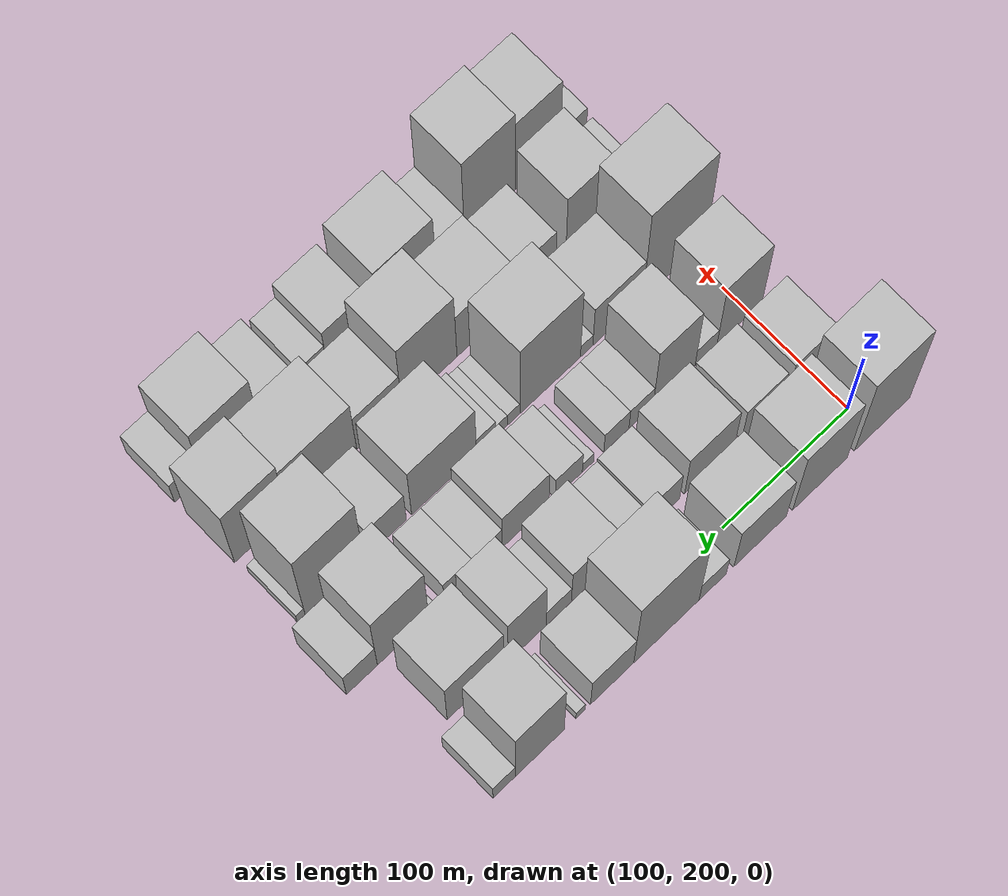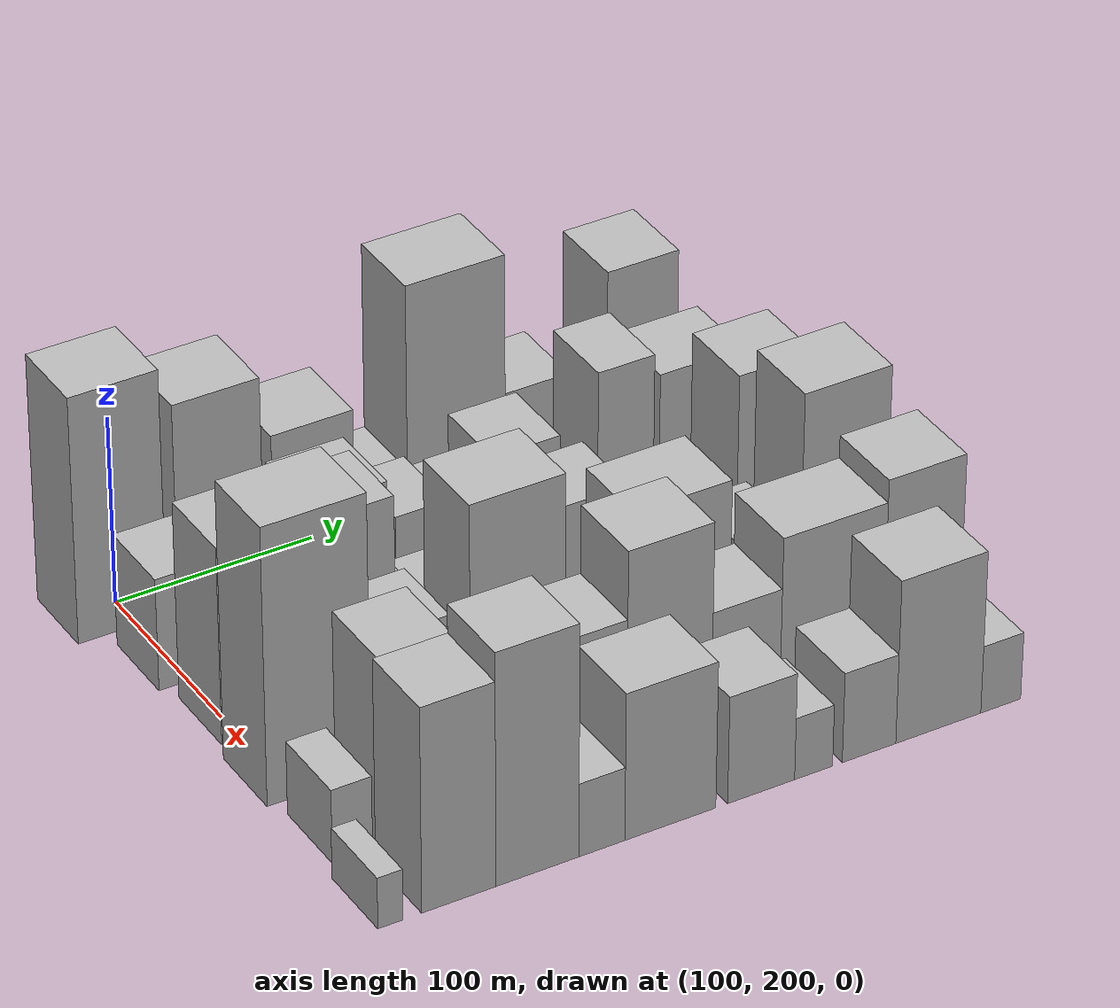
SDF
<sdf version="1.6">
 <world name="default">
  <model name="building_29">
   <static>1</static>
   <pose>100.0000 192.8923 0 0.000000 0.000000 0.000000</pose>
   <link name="link">
    <pose>0 0 66.00 0 0 0</pose>
    <collision name="collision"><geometry><box><size>40.0000 44.4707 132.0000</size></box></geometry></collision>
    <visual name="visual">
     <cast_shadows>0</cast_shadows>
     <geometry><box><size>40.0000 44.4707 132.0000</size></box></geometry>
     <material>
      <script>
       <uri>model://HANNAS_wall/materials/scripts</uri>
       <uri>model://HANNAS_wall/materials/textures</uri>
       <name>vrc/HANNAS_wall</name>
      </script>
     </material>
    </visual>
   </link>
  </model>
  <model name="building_30">
   <static>1</static>
   <pose>100.0000 243.0312 0 0.000000 0.000000 0.000000</pose>
   <link name="link">
    <pose>0 0 55.50 0 0 0</pose>
    <collision name="collision"><geometry><box><size>40.0000 43.8071 111.0000</size></box></geometry></collision>
    <visual name="visual">
     <cast_shadows>0</cast_shadows>
     <geometry><box><size>40.0000 43.8071 111.0000</size></box></geometry>
     <material>
      <script>
       <uri>model://HANNAS_wall/materials/scripts</uri>
       <uri>model://HANNAS_wall/materials/textures</uri>
       <name>vrc/HANNAS_wall</name>
      </script>
     </material>
    </visual>
   </link>
  </model>
  <model name="building_31">
   <static>1</static>
   <pose>100.0000 290.7490 0 0.000000 0.000000 0.000000</pose>
   <link name="link">
    <pose>0 0 39.00 0 0 0</pose>
    <collision name="collision"><geometry><box><size>40.0000 41.6285 78.0000</size></box></geometry></collision>
    <visual name="visual">
     <cast_shadows>0</cast_shadows>
     <geometry><box><size>40.0000 41.6285 78.0000</size></box></geometry>
     <material>
      <script>
       <uri>model://HANNAS_wall/materials/scripts</uri>
       <uri>model://HANNAS_wall/materials/textures</uri>
       <name>vrc/HANNAS_wall</name>
      </script>
     </material>
    </visual>
   </link>
  </model>
  <model name="building_32">
   <static>1</static>
   <pose>100.0000 328.3481 0 0.000000 0.000000 0.000000</pose>
   <link name="link">
    <pose>0 0 18.00 0 0 0</pose>
    <collision name="collision"><geometry><box><size>40.0000 21.5696 36.0000</size></box></geometry></collision>
    <visual name="visual">
     <cast_shadows>0</cast_shadows>
     <geometry><box><size>40.0000 21.5696 36.0000</size></box></geometry>
     <material>
      <script>
       <uri>model://HANNAS_wall/materials/scripts</uri>
       <uri>model://HANNAS_wall/materials/textures</uri>
       <name>vrc/HANNAS_wall</name>
      </script>
     </material>
    </visual>
   </link>
  </model>
  <model name="building_33">
   <static>1</static>
   <pose>100.0000 364.6896 0 0.000000 0.000000 0.000000</pose>
   <link name="link">
    <pose>0 0 67.50 0 0 0</pose>
    <collision name="collision"><geometry><box><size>40.0000 51.1135 135.0000</size></box></geometry></collision>
    <visual name="visual">
     <cast_shadows>0</cast_shadows>
     <geometry><box><size>40.0000 51.1135 135.0000</size></box></geometry>
     <material>
      <script>
       <uri>model://HANNAS_wall/materials/scripts</uri>
       <uri>model://HANNAS_wall/materials/textures</uri>
       <name>vrc/HANNAS_wall</name>
      </script>
     </material>
    </visual>
   </link>
  </model>
  <model name="building_34">
   <static>1</static>
   <pose>100.0000 407.0011 0 0.000000 0.000000 0.000000</pose>
   <link name="link">
    <pose>0 0 30.00 0 0 0</pose>
    <collision name="collision"><geometry><box><size>40.0000 33.5095 60.0000</size></box></geometry></collision>
    <visual name="visual">
     <cast_shadows>0</cast_shadows>
     <geometry><box><size>40.0000 33.5095 60.0000</size></box></geometry>
     <material>
      <script>
       <uri>model://HANNAS_wall/materials/scripts</uri>
       <uri>model://HANNAS_wall/materials/textures</uri>
       <name>vrc/HANNAS_wall</name>
      </script>
     </material>
    </visual>
   </link>
  </model>
  <model name="building_35">
   <static>1</static>
   <pose>100.0000 431.4122 0 0.000000 0.000000 0.000000</pose>
   <link name="link">
    <pose>0 0 7.50 0 0 0</pose>
    <collision name="collision"><geometry><box><size>40.0000 7.3127 15.0000</size></box></geometry></collision>
    <visual name="visual">
     <cast_shadows>0</cast_shadows>
     <geometry><box><size>40.0000 7.3127 15.0000</size></box></geometry>
     <material>
      <script>
       <uri>model://HANNAS_wall/materials/scripts</uri>
       <uri>model://HANNAS_wall/materials/textures</uri>
       <name>vrc/HANNAS_wall</name>
      </script>
     </material>
    </visual>
   </link>
  </model>
  <model name="building_36">
   <static>1</static>
   <pose>100.0000 462.8106 0 0.000000 0.000000 0.000000</pose>
   <link name="link">
    <pose>0 0 54.00 0 0 0</pose>
    <collision name="collision"><geometry><box><size>40.0000 37.4840 108.0000</size></box></geometry></collision>
    <visual name="visual">
     <cast_shadows>0</cast_shadows>
     <geometry><box><size>40.0000 37.4840 108.0000</size></box></geometry>
     <material>
      <script>
       <uri>model://HANNAS_wall/materials/scripts</uri>
       <uri>model://HANNAS_wall/materials/textures</uri>
       <name>vrc/HANNAS_wall</name>
      </script>
     </material>
    </visual>
   </link>
  </model>
  <model name="building_37">
   <static>1</static>
   <pose>100.0000 490.0968 0 0.000000 0.000000 0.000000</pose>
   <link name="link">
    <pose>0 0 15.00 0 0 0</pose>
    <collision name="collision"><geometry><box><size>40.0000 17.0884 30.0000</size></box></geometry></collision>
    <visual name="visual">
     <cast_shadows>0</cast_shadows>
     <geometry><box><size>40.0000 17.0884 30.0000</size></box></geometry>
     <material>
      <script>
       <uri>model://HANNAS_wall/materials/scripts</uri>
       <uri>model://HANNAS_wall/materials/textures</uri>
       <name>vrc/HANNAS_wall</name>
      </script>
     </material>
    </visual>
   </link>
  </model>
  <model name="building_76">
   <static>1</static>
   <pose>149.0000 202.2309 0 0.000000 0.000000 0.000000</pose>
   <link name="link">
    <pose>0 0 30.00 0 0 0</pose>
    <collision name="collision"><geometry><box><size>40.0000 33.4628 60.0000</size></box></geometry></collision>
    <visual name="visual">
     <cast_shadows>0</cast_shadows>
     <geometry><box><size>40.0000 33.4628 60.0000</size></box></geometry>
     <material>
      <script>
       <uri>model://HANNAS_wall/materials/scripts</uri>
       <uri>model://HANNAS_wall/materials/textures</uri>
       <name>vrc/HANNAS_wall</name>
      </script>
     </material>
    </visual>
   </link>
  </model>
  <model name="building_77">
   <static>1</static>
   <pose>149.0000 240.1183 0 0.000000 0.000000 0.000000</pose>
   <link name="link">
    <pose>0 0 28.50 0 0 0</pose>
    <collision name="collision"><geometry><box><size>40.0000 32.3120 57.0000</size></box></geometry></collision>
    <visual name="visual">
     <cast_shadows>0</cast_shadows>
     <geometry><box><size>40.0000 32.3120 57.0000</size></box></geometry>
     <material>
      <script>
       <uri>model://HANNAS_wall/materials/scripts</uri>
       <uri>model://HANNAS_wall/materials/textures</uri>
       <name>vrc/HANNAS_wall</name>
      </script>
     </material>
    </visual>
   </link>
  </model>
  <model name="building_78">
   <static>1</static>
   <pose>149.0000 281.9620 0 0.000000 0.000000 0.000000</pose>
   <link name="link">
    <pose>0 0 36.00 0 0 0</pose>
    <collision name="collision"><geometry><box><size>40.0000 39.3752 72.0000</size></box></geometry></collision>
    <visual name="visual">
     <cast_shadows>0</cast_shadows>
     <geometry><box><size>40.0000 39.3752 72.0000</size></box></geometry>
     <material>
      <script>
       <uri>model://HANNAS_wall/materials/scripts</uri>
       <uri>model://HANNAS_wall/materials/textures</uri>
       <name>vrc/HANNAS_wall</name>
      </script>
     </material>
    </visual>
   </link>
  </model>
  <model name="building_79">
   <static>1</static>
   <pose>149.0000 319.0862 0 0.000000 0.000000 0.000000</pose>
   <link name="link">
    <pose>0 0 25.50 0 0 0</pose>
    <collision name="collision"><geometry><box><size>40.0000 26.8733 51.0000</size></box></geometry></collision>
    <visual name="visual">
     <cast_shadows>0</cast_shadows>
     <geometry><box><size>40.0000 26.8733 51.0000</size></box></geometry>
     <material>
      <script>
       <uri>model://HANNAS_wall/materials/scripts</uri>
       <uri>model://HANNAS_wall/materials/textures</uri>
       <name>vrc/HANNAS_wall</name>
      </script>
     </material>
    </visual>
   </link>
  </model>
  <model name="building_80">
   <static>1</static>
   <pose>149.0000 343.9916 0 0.000000 0.000000 0.000000</pose>
   <link name="link">
    <pose>0 0 22.50 0 0 0</pose>
    <collision name="collision"><geometry><box><size>40.0000 22.9375 45.0000</size></box></geometry></collision>
    <visual name="visual">
     <cast_shadows>0</cast_shadows>
     <geometry><box><size>40.0000 22.9375 45.0000</size></box></geometry>
     <material>
      <script>
       <uri>model://HANNAS_wall/materials/scripts</uri>
       <uri>model://HANNAS_wall/materials/textures</uri>
       <name>vrc/HANNAS_wall</name>
      </script>
     </material>
    </visual>
   </link>
  </model>
  <model name="building_81">
   <static>1</static>
   <pose>149.0000 373.0368 0 0.000000 0.000000 0.000000</pose>
   <link name="link">
    <pose>0 0 33.00 0 0 0</pose>
    <collision name="collision"><geometry><box><size>40.0000 35.1529 66.0000</size></box></geometry></collision>
    <visual name="visual">
     <cast_shadows>0</cast_shadows>
     <geometry><box><size>40.0000 35.1529 66.0000</size></box></geometry>
     <material>
      <script>
       <uri>model://HANNAS_wall/materials/scripts</uri>
       <uri>model://HANNAS_wall/materials/textures</uri>
       <name>vrc/HANNAS_wall</name>
      </script>
     </material>
    </visual>
   </link>
  </model>
  <model name="building_82">
   <static>1</static>
   <pose>149.0000 400.3990 0 0.000000 0.000000 0.000000</pose>
   <link name="link">
    <pose>0 0 16.50 0 0 0</pose>
    <collision name="collision"><geometry><box><size>40.0000 19.5715 33.0000</size></box></geometry></collision>
    <visual name="visual">
     <cast_shadows>0</cast_shadows>
     <geometry><box><size>40.0000 19.5715 33.0000</size></box></geometry>
     <material>
      <script>
       <uri>model://HANNAS_wall/materials/scripts</uri>
       <uri>model://HANNAS_wall/materials/textures</uri>
       <name>vrc/HANNAS_wall</name>
      </script>
     </material>
    </visual>
   </link>
  </model>
  <model name="building_83">
   <static>1</static>
   <pose>149.0000 424.9058 0 0.000000 0.000000 0.000000</pose>
   <link name="link">
    <pose>0 0 46.50 0 0 0</pose>
    <collision name="collision"><geometry><box><size>40.0000 29.4421 93.0000</size></box></geometry></collision>
    <visual name="visual">
     <cast_shadows>0</cast_shadows>
     <geometry><box><size>40.0000 29.4421 93.0000</size></box></geometry>
     <material>
      <script>
       <uri>model://HANNAS_wall/materials/scripts</uri>
       <uri>model://HANNAS_wall/materials/textures</uri>
       <name>vrc/HANNAS_wall</name>
      </script>
     </material>
    </visual>
   </link>
  </model>
  <model name="building_84">
   <static>1</static>
   <pose>149.0000 464.5545 0 0.000000 0.000000 0.000000</pose>
   <link name="link">
    <pose>0 0 40.50 0 0 0</pose>
    <collision name="collision"><geometry><box><size>40.0000 43.8552 81.0000</size></box></geometry></collision>
    <visual name="visual">
     <cast_shadows>0</cast_shadows>
     <geometry><box><size>40.0000 43.8552 81.0000</size></box></geometry>
     <material>
      <script>
       <uri>model://HANNAS_wall/materials/scripts</uri>
       <uri>model://HANNAS_wall/materials/textures</uri>
       <name>vrc/HANNAS_wall</name>
      </script>
     </material>
    </visual>
   </link>
  </model>
  <model name="building_122">
   <static>1</static>
   <pose>198.0000 208.8741 0 0.000000 0.000000 0.000000</pose>
   <link name="link">
    <pose>0 0 52.50 0 0 0</pose>
    <collision name="collision"><geometry><box><size>40.0000 36.3513 105.0000</size></box></geometry></collision>
    <visual name="visual">
     <cast_shadows>0</cast_shadows>
     <geometry><box><size>40.0000 36.3513 105.0000</size></box></geometry>
     <material>
      <script>
       <uri>model://HANNAS_wall/materials/scripts</uri>
       <uri>model://HANNAS_wall/materials/textures</uri>
       <name>vrc/HANNAS_wall</name>
      </script>
     </material>
    </visual>
   </link>
  </model>
  <model name="building_123">
   <static>1</static>
   <pose>198.0000 235.8446 0 0.000000 0.000000 0.000000</pose>
   <link name="link">
    <pose>0 0 15.00 0 0 0</pose>
    <collision name="collision"><geometry><box><size>40.0000 17.5897 30.0000</size></box></geometry></collision>
    <visual name="visual">
     <cast_shadows>0</cast_shadows>
     <geometry><box><size>40.0000 17.5897 30.0000</size></box></geometry>
     <material>
      <script>
       <uri>model://HANNAS_wall/materials/scripts</uri>
       <uri>model://HANNAS_wall/materials/textures</uri>
       <name>vrc/HANNAS_wall</name>
      </script>
     </material>
    </visual>
   </link>
  </model>
  <model name="building_124">
   <static>1</static>
   <pose>198.0000 261.3293 0 0.000000 0.000000 0.000000</pose>
   <link name="link">
    <pose>0 0 51.00 0 0 0</pose>
    <collision name="collision"><geometry><box><size>40.0000 33.3797 102.0000</size></box></geometry></collision>
    <visual name="visual">
     <cast_shadows>0</cast_shadows>
     <geometry><box><size>40.0000 33.3797 102.0000</size></box></geometry>
     <material>
      <script>
       <uri>model://HANNAS_wall/materials/scripts</uri>
       <uri>model://HANNAS_wall/materials/textures</uri>
       <name>vrc/HANNAS_wall</name>
      </script>
     </material>
    </visual>
   </link>
  </model>
  <model name="building_125">
   <static>1</static>
   <pose>198.0000 287.6530 0 0.000000 0.000000 0.000000</pose>
   <link name="link">
    <pose>0 0 18.00 0 0 0</pose>
    <collision name="collision"><geometry><box><size>40.0000 19.2679 36.0000</size></box></geometry></collision>
    <visual name="visual">
     <cast_shadows>0</cast_shadows>
     <geometry><box><size>40.0000 19.2679 36.0000</size></box></geometry>
     <material>
      <script>
       <uri>model://HANNAS_wall/materials/scripts</uri>
       <uri>model://HANNAS_wall/materials/textures</uri>
       <name>vrc/HANNAS_wall</name>
      </script>
     </material>
    </visual>
   </link>
  </model>
  <model name="building_126">
   <static>1</static>
   <pose>198.0000 307.2632 0 0.000000 0.000000 0.000000</pose>
   <link name="link">
    <pose>0 0 18.00 0 0 0</pose>
    <collision name="collision"><geometry><box><size>40.0000 19.9525 36.0000</size></box></geometry></collision>
    <visual name="visual">
     <cast_shadows>0</cast_shadows>
     <geometry><box><size>40.0000 19.9525 36.0000</size></box></geometry>
     <material>
      <script>
       <uri>model://HANNAS_wall/materials/scripts</uri>
       <uri>model://HANNAS_wall/materials/textures</uri>
       <name>vrc/HANNAS_wall</name>
      </script>
     </material>
    </visual>
   </link>
  </model>
  <model name="building_127">
   <static>1</static>
   <pose>198.0000 329.7001 0 0.000000 0.000000 0.000000</pose>
   <link name="link">
    <pose>0 0 9.00 0 0 0</pose>
    <collision name="collision"><geometry><box><size>40.0000 8.9213 18.0000</size></box></geometry></collision>
    <visual name="visual">
     <cast_shadows>0</cast_shadows>
     <geometry><box><size>40.0000 8.9213 18.0000</size></box></geometry>
     <material>
      <script>
       <uri>model://HANNAS_wall/materials/scripts</uri>
       <uri>model://HANNAS_wall/materials/textures</uri>
       <name>vrc/HANNAS_wall</name>
      </script>
     </material>
    </visual>
   </link>
  </model>
  <model name="building_128">
   <static>1</static>
   <pose>198.0000 344.7914 0 0.000000 0.000000 0.000000</pose>
   <link name="link">
    <pose>0 0 19.50 0 0 0</pose>
    <collision name="collision"><geometry><box><size>40.0000 21.2613 39.0000</size></box></geometry></collision>
    <visual name="visual">
     <cast_shadows>0</cast_shadows>
     <geometry><box><size>40.0000 21.2613 39.0000</size></box></geometry>
     <material>
      <script>
       <uri>model://HANNAS_wall/materials/scripts</uri>
       <uri>model://HANNAS_wall/materials/textures</uri>
       <name>vrc/HANNAS_wall</name>
      </script>
     </material>
    </visual>
   </link>
  </model>
  <model name="building_129">
   <static>1</static>
   <pose>198.0000 378.5626 0 0.000000 0.000000 0.000000</pose>
   <link name="link">
    <pose>0 0 33.00 0 0 0</pose>
    <collision name="collision"><geometry><box><size>40.0000 36.2810 66.0000</size></box></geometry></collision>
    <visual name="visual">
     <cast_shadows>0</cast_shadows>
     <geometry><box><size>40.0000 36.2810 66.0000</size></box></geometry>
     <material>
      <script>
       <uri>model://HANNAS_wall/materials/scripts</uri>
       <uri>model://HANNAS_wall/materials/textures</uri>
       <name>vrc/HANNAS_wall</name>
      </script>
     </material>
    </visual>
   </link>
  </model>
  <model name="building_130">
   <static>1</static>
   <pose>198.0000 408.3491 0 0.000000 0.000000 0.000000</pose>
   <link name="link">
    <pose>0 0 21.00 0 0 0</pose>
    <collision name="collision"><geometry><box><size>40.0000 23.2920 42.0000</size></box></geometry></collision>
    <visual name="visual">
     <cast_shadows>0</cast_shadows>
     <geometry><box><size>40.0000 23.2920 42.0000</size></box></geometry>
     <material>
      <script>
       <uri>model://HANNAS_wall/materials/scripts</uri>
       <uri>model://HANNAS_wall/materials/textures</uri>
       <name>vrc/HANNAS_wall</name>
      </script>
     </material>
    </visual>
   </link>
  </model>
  <model name="building_131">
   <static>1</static>
   <pose>198.0000 430.8841 0 0.000000 0.000000 0.000000</pose>
   <link name="link">
    <pose>0 0 21.00 0 0 0</pose>
    <collision name="collision"><geometry><box><size>40.0000 21.7779 42.0000</size></box></geometry></collision>
    <visual name="visual">
     <cast_shadows>0</cast_shadows>
     <geometry><box><size>40.0000 21.7779 42.0000</size></box></geometry>
     <material>
      <script>
       <uri>model://HANNAS_wall/materials/scripts</uri>
       <uri>model://HANNAS_wall/materials/textures</uri>
       <name>vrc/HANNAS_wall</name>
      </script>
     </material>
    </visual>
   </link>
  </model>
  <model name="building_132">
   <static>1</static>
   <pose>198.0000 450.7834 0 0.000000 0.000000 0.000000</pose>
   <link name="link">
    <pose>0 0 7.50 0 0 0</pose>
    <collision name="collision"><geometry><box><size>40.0000 6.0209 15.0000</size></box></geometry></collision>
    <visual name="visual">
     <cast_shadows>0</cast_shadows>
     <geometry><box><size>40.0000 6.0209 15.0000</size></box></geometry>
     <material>
      <script>
       <uri>model://HANNAS_wall/materials/scripts</uri>
       <uri>model://HANNAS_wall/materials/textures</uri>
       <name>vrc/HANNAS_wall</name>
      </script>
     </material>
    </visual>
   </link>
  </model>
  <model name="building_133">
   <static>1</static>
   <pose>198.0000 473.4392 0 0.000000 0.000000 0.000000</pose>
   <link name="link">
    <pose>0 0 52.50 0 0 0</pose>
    <collision name="collision"><geometry><box><size>40.0000 39.2907 105.0000</size></box></geometry></collision>
    <visual name="visual">
     <cast_shadows>0</cast_shadows>
     <geometry><box><size>40.0000 39.2907 105.0000</size></box></geometry>
     <material>
      <script>
       <uri>model://HANNAS_wall/materials/scripts</uri>
       <uri>model://HANNAS_wall/materials/textures</uri>
       <name>vrc/HANNAS_wall</name>
      </script>
     </material>
    </visual>
   </link>
  </model>
  <model name="building_134">
   <static>1</static>
   <pose>198.0000 504.9357 0 0.000000 0.000000 0.000000</pose>
   <link name="link">
    <pose>0 0 22.50 0 0 0</pose>
    <collision name="collision"><geometry><box><size>40.0000 23.7022 45.0000</size></box></geometry></collision>
    <visual name="visual">
     <cast_shadows>0</cast_shadows>
     <geometry><box><size>40.0000 23.7022 45.0000</size></box></geometry>
     <material>
      <script>
       <uri>model://HANNAS_wall/materials/scripts</uri>
       <uri>model://HANNAS_wall/materials/textures</uri>
       <name>vrc/HANNAS_wall</name>
      </script>
     </material>
    </visual>
   </link>
  </model>
  <model name="building_182">
   <static>1</static>
   <pose>247.0000 212.2404 0 0.000000 0.000000 0.000000</pose>
   <link name="link">
    <pose>0 0 73.50 0 0 0</pose>
    <collision name="collision"><geometry><box><size>40.0000 51.1630 147.0000</size></box></geometry></collision>
    <visual name="visual">
     <cast_shadows>0</cast_shadows>
     <geometry><box><size>40.0000 51.1630 147.0000</size></box></geometry>
     <material>
      <script>
       <uri>model://HANNAS_wall/materials/scripts</uri>
       <uri>model://HANNAS_wall/materials/textures</uri>
       <name>vrc/HANNAS_wall</name>
      </script>
     </material>
    </visual>
   </link>
  </model>
  <model name="building_183">
   <static>1</static>
   <pose>247.0000 257.8238 0 0.000000 0.000000 0.000000</pose>
   <link name="link">
    <pose>0 0 34.50 0 0 0</pose>
    <collision name="collision"><geometry><box><size>40.0000 40.0038 69.0000</size></box></geometry></collision>
    <visual name="visual">
     <cast_shadows>0</cast_shadows>
     <geometry><box><size>40.0000 40.0038 69.0000</size></box></geometry>
     <material>
      <script>
       <uri>model://HANNAS_wall/materials/scripts</uri>
       <uri>model://HANNAS_wall/materials/textures</uri>
       <name>vrc/HANNAS_wall</name>
      </script>
     </material>
    </visual>
   </link>
  </model>
  <model name="building_184">
   <static>1</static>
   <pose>247.0000 282.7616 0 0.000000 0.000000 0.000000</pose>
   <link name="link">
    <pose>0 0 10.50 0 0 0</pose>
    <collision name="collision"><geometry><box><size>40.0000 9.8719 21.0000</size></box></geometry></collision>
    <visual name="visual">
     <cast_shadows>0</cast_shadows>
     <geometry><box><size>40.0000 9.8719 21.0000</size></box></geometry>
     <material>
      <script>
       <uri>model://HANNAS_wall/materials/scripts</uri>
       <uri>model://HANNAS_wall/materials/textures</uri>
       <name>vrc/HANNAS_wall</name>
      </script>
     </material>
    </visual>
   </link>
  </model>
  <model name="building_185">
   <static>1</static>
   <pose>247.0000 311.6670 0 0.000000 0.000000 0.000000</pose>
   <link name="link">
    <pose>0 0 61.50 0 0 0</pose>
    <collision name="collision"><geometry><box><size>40.0000 47.9388 123.0000</size></box></geometry></collision>
    <visual name="visual">
     <cast_shadows>0</cast_shadows>
     <geometry><box><size>40.0000 47.9388 123.0000</size></box></geometry>
     <material>
      <script>
       <uri>model://HANNAS_wall/materials/scripts</uri>
       <uri>model://HANNAS_wall/materials/textures</uri>
       <name>vrc/HANNAS_wall</name>
      </script>
     </material>
    </visual>
   </link>
  </model>
  <model name="building_186">
   <static>1</static>
   <pose>247.0000 340.5482 0 0.000000 0.000000 0.000000</pose>
   <link name="link">
    <pose>0 0 10.50 0 0 0</pose>
    <collision name="collision"><geometry><box><size>40.0000 9.8236 21.0000</size></box></geometry></collision>
    <visual name="visual">
     <cast_shadows>0</cast_shadows>
     <geometry><box><size>40.0000 9.8236 21.0000</size></box></geometry>
     <material>
      <script>
       <uri>model://HANNAS_wall/materials/scripts</uri>
       <uri>model://HANNAS_wall/materials/textures</uri>
       <name>vrc/HANNAS_wall</name>
      </script>
     </material>
    </visual>
   </link>
  </model>
  <model name="building_187">
   <static>1</static>
   <pose>247.0000 349.9253 0 0.000000 0.000000 0.000000</pose>
   <link name="link">
    <pose>0 0 10.50 0 0 0</pose>
    <collision name="collision"><geometry><box><size>40.0000 8.9304 21.0000</size></box></geometry></collision>
    <visual name="visual">
     <cast_shadows>0</cast_shadows>
     <geometry><box><size>40.0000 8.9304 21.0000</size></box></geometry>
     <material>
      <script>
       <uri>model://HANNAS_wall/materials/scripts</uri>
       <uri>model://HANNAS_wall/materials/textures</uri>
       <name>vrc/HANNAS_wall</name>
      </script>
     </material>
    </visual>
   </link>
  </model>
  <model name="building_188">
   <static>1</static>
   <pose>247.0000 361.9698 0 0.000000 0.000000 0.000000</pose>
   <link name="link">
    <pose>0 0 15.00 0 0 0</pose>
    <collision name="collision"><geometry><box><size>40.0000 15.1586 30.0000</size></box></geometry></collision>
    <visual name="visual">
     <cast_shadows>0</cast_shadows>
     <geometry><box><size>40.0000 15.1586 30.0000</size></box></geometry>
     <material>
      <script>
       <uri>model://HANNAS_wall/materials/scripts</uri>
       <uri>model://HANNAS_wall/materials/textures</uri>
       <name>vrc/HANNAS_wall</name>
      </script>
     </material>
    </visual>
   </link>
  </model>
  <model name="building_189">
   <static>1</static>
   <pose>247.0000 394.8793 0 0.000000 0.000000 0.000000</pose>
   <link name="link">
    <pose>0 0 45.00 0 0 0</pose>
    <collision name="collision"><geometry><box><size>40.0000 50.6605 90.0000</size></box></geometry></collision>
    <visual name="visual">
     <cast_shadows>0</cast_shadows>
     <geometry><box><size>40.0000 50.6605 90.0000</size></box></geometry>
     <material>
      <script>
       <uri>model://HANNAS_wall/materials/scripts</uri>
       <uri>model://HANNAS_wall/materials/textures</uri>
       <name>vrc/HANNAS_wall</name>
      </script>
     </material>
    </visual>
   </link>
  </model>
  <model name="building_190">
   <static>1</static>
   <pose>247.0000 438.5553 0 0.000000 0.000000 0.000000</pose>
   <link name="link">
    <pose>0 0 27.00 0 0 0</pose>
    <collision name="collision"><geometry><box><size>40.0000 28.6915 54.0000</size></box></geometry></collision>
    <visual name="visual">
     <cast_shadows>0</cast_shadows>
     <geometry><box><size>40.0000 28.6915 54.0000</size></box></geometry>
     <material>
      <script>
       <uri>model://HANNAS_wall/materials/scripts</uri>
       <uri>model://HANNAS_wall/materials/textures</uri>
       <name>vrc/HANNAS_wall</name>
      </script>
     </material>
    </visual>
   </link>
  </model>
  <model name="building_191">
   <static>1</static>
   <pose>247.0000 479.5431 0 0.000000 0.000000 0.000000</pose>
   <link name="link">
    <pose>0 0 61.50 0 0 0</pose>
    <collision name="collision"><geometry><box><size>40.0000 45.2839 123.0000</size></box></geometry></collision>
    <visual name="visual">
     <cast_shadows>0</cast_shadows>
     <geometry><box><size>40.0000 45.2839 123.0000</size></box></geometry>
     <material>
      <script>
       <uri>model://HANNAS_wall/materials/scripts</uri>
       <uri>model://HANNAS_wall/materials/textures</uri>
       <name>vrc/HANNAS_wall</name>
      </script>
     </material>
    </visual>
   </link>
  </model>
  <model name="building_192">
   <static>1</static>
   <pose>247.0000 505.2064 0 0.000000 0.000000 0.000000</pose>
   <link name="link">
    <pose>0 0 7.50 0 0 0</pose>
    <collision name="collision"><geometry><box><size>40.0000 6.0427 15.0000</size></box></geometry></collision>
    <visual name="visual">
     <cast_shadows>0</cast_shadows>
     <geometry><box><size>40.0000 6.0427 15.0000</size></box></geometry>
     <material>
      <script>
       <uri>model://HANNAS_wall/materials/scripts</uri>
       <uri>model://HANNAS_wall/materials/textures</uri>
       <name>vrc/HANNAS_wall</name>
      </script>
     </material>
    </visual>
   </link>
  </model>
  <model name="building_232">
   <static>1</static>
   <pose>296.0000 201.5705 0 0.000000 0.000000 0.000000</pose>
   <link name="link">
    <pose>0 0 19.50 0 0 0</pose>
    <collision name="collision"><geometry><box><size>40.0000 19.6628 39.0000</size></box></geometry></collision>
    <visual name="visual">
     <cast_shadows>0</cast_shadows>
     <geometry><box><size>40.0000 19.6628 39.0000</size></box></geometry>
     <material>
      <script>
       <uri>model://HANNAS_wall/materials/scripts</uri>
       <uri>model://HANNAS_wall/materials/textures</uri>
       <name>vrc/HANNAS_wall</name>
      </script>
     </material>
    </visual>
   </link>
  </model>
  <model name="building_233">
   <static>1</static>
   <pose>296.0000 233.4391 0 0.000000 0.000000 0.000000</pose>
   <link name="link">
    <pose>0 0 49.50 0 0 0</pose>
    <collision name="collision"><geometry><box><size>40.0000 36.0744 99.0000</size></box></geometry></collision>
    <visual name="visual">
     <cast_shadows>0</cast_shadows>
     <geometry><box><size>40.0000 36.0744 99.0000</size></box></geometry>
     <material>
      <script>
       <uri>model://HANNAS_wall/materials/scripts</uri>
       <uri>model://HANNAS_wall/materials/textures</uri>
       <name>vrc/HANNAS_wall</name>
      </script>
     </material>
    </visual>
   </link>
  </model>
  <model name="building_234">
   <static>1</static>
   <pose>296.0000 276.3357 0 0.000000 0.000000 0.000000</pose>
   <link name="link">
    <pose>0 0 30.00 0 0 0</pose>
    <collision name="collision"><geometry><box><size>40.0000 33.7189 60.0000</size></box></geometry></collision>
    <visual name="visual">
     <cast_shadows>0</cast_shadows>
     <geometry><box><size>40.0000 33.7189 60.0000</size></box></geometry>
     <material>
      <script>
       <uri>model://HANNAS_wall/materials/scripts</uri>
       <uri>model://HANNAS_wall/materials/textures</uri>
       <name>vrc/HANNAS_wall</name>
      </script>
     </material>
    </visual>
   </link>
  </model>
  <model name="building_235">
   <static>1</static>
   <pose>296.0000 315.5065 0 0.000000 0.000000 0.000000</pose>
   <link name="link">
    <pose>0 0 37.50 0 0 0</pose>
    <collision name="collision"><geometry><box><size>40.0000 44.6225 75.0000</size></box></geometry></collision>
    <visual name="visual">
     <cast_shadows>0</cast_shadows>
     <geometry><box><size>40.0000 44.6225 75.0000</size></box></geometry>
     <material>
      <script>
       <uri>model://HANNAS_wall/materials/scripts</uri>
       <uri>model://HANNAS_wall/materials/textures</uri>
       <name>vrc/HANNAS_wall</name>
      </script>
     </material>
    </visual>
   </link>
  </model>
  <model name="building_236">
   <static>1</static>
   <pose>296.0000 359.3648 0 0.000000 0.000000 0.000000</pose>
   <link name="link">
    <pose>0 0 55.50 0 0 0</pose>
    <collision name="collision"><geometry><box><size>40.0000 43.0940 111.0000</size></box></geometry></collision>
    <visual name="visual">
     <cast_shadows>0</cast_shadows>
     <geometry><box><size>40.0000 43.0940 111.0000</size></box></geometry>
     <material>
      <script>
       <uri>model://HANNAS_wall/materials/scripts</uri>
       <uri>model://HANNAS_wall/materials/textures</uri>
       <name>vrc/HANNAS_wall</name>
      </script>
     </material>
    </visual>
   </link>
  </model>
  <model name="building_237">
   <static>1</static>
   <pose>296.0000 398.5530 0 0.000000 0.000000 0.000000</pose>
   <link name="link">
    <pose>0 0 31.50 0 0 0</pose>
    <collision name="collision"><geometry><box><size>40.0000 35.2824 63.0000</size></box></geometry></collision>
    <visual name="visual">
     <cast_shadows>0</cast_shadows>
     <geometry><box><size>40.0000 35.2824 63.0000</size></box></geometry>
     <material>
      <script>
       <uri>model://HANNAS_wall/materials/scripts</uri>
       <uri>model://HANNAS_wall/materials/textures</uri>
       <name>vrc/HANNAS_wall</name>
      </script>
     </material>
    </visual>
   </link>
  </model>
  <model name="building_238">
   <static>1</static>
   <pose>296.0000 443.0088 0 0.000000 0.000000 0.000000</pose>
   <link name="link">
    <pose>0 0 45.00 0 0 0</pose>
    <collision name="collision"><geometry><box><size>40.0000 53.6292 90.0000</size></box></geometry></collision>
    <visual name="visual">
     <cast_shadows>0</cast_shadows>
     <geometry><box><size>40.0000 53.6292 90.0000</size></box></geometry>
     <material>
      <script>
       <uri>model://HANNAS_wall/materials/scripts</uri>
       <uri>model://HANNAS_wall/materials/textures</uri>
       <name>vrc/HANNAS_wall</name>
      </script>
     </material>
    </visual>
   </link>
  </model>
  <model name="building_239">
   <static>1</static>
   <pose>296.0000 489.9892 0 0.000000 0.000000 0.000000</pose>
   <link name="link">
    <pose>0 0 51.00 0 0 0</pose>
    <collision name="collision"><geometry><box><size>40.0000 40.3316 102.0000</size></box></geometry></collision>
    <visual name="visual">
     <cast_shadows>0</cast_shadows>
     <geometry><box><size>40.0000 40.3316 102.0000</size></box></geometry>
     <material>
      <script>
       <uri>model://HANNAS_wall/materials/scripts</uri>
       <uri>model://HANNAS_wall/materials/textures</uri>
       <name>vrc/HANNAS_wall</name>
      </script>
     </material>
    </visual>
   </link>
  </model>
  <model name="building_280">
   <static>1</static>
   <pose>345.0000 192.7028 0 0.000000 0.000000 0.000000</pose>
   <link name="link">
    <pose>0 0 13.50 0 0 0</pose>
    <collision name="collision"><geometry><box><size>40.0000 12.1884 27.0000</size></box></geometry></collision>
    <visual name="visual">
     <cast_shadows>0</cast_shadows>
     <geometry><box><size>40.0000 12.1884 27.0000</size></box></geometry>
     <material>
      <script>
       <uri>model://HANNAS_wall/materials/scripts</uri>
       <uri>model://HANNAS_wall/materials/textures</uri>
       <name>vrc/HANNAS_wall</name>
      </script>
     </material>
    </visual>
   </link>
  </model>
  <model name="building_281">
   <static>1</static>
   <pose>345.0000 225.8508 0 0.000000 0.000000 0.000000</pose>
   <link name="link">
    <pose>0 0 54.00 0 0 0</pose>
    <collision name="collision"><geometry><box><size>40.0000 36.1076 108.0000</size></box></geometry></collision>
    <visual name="visual">
     <cast_shadows>0</cast_shadows>
     <geometry><box><size>40.0000 36.1076 108.0000</size></box></geometry>
     <material>
      <script>
       <uri>model://HANNAS_wall/materials/scripts</uri>
       <uri>model://HANNAS_wall/materials/textures</uri>
       <name>vrc/HANNAS_wall</name>
      </script>
     </material>
    </visual>
   </link>
  </model>
  <model name="building_282">
   <static>1</static>
   <pose>345.0000 264.3670 0 0.000000 0.000000 0.000000</pose>
   <link name="link">
    <pose>0 0 61.50 0 0 0</pose>
    <collision name="collision"><geometry><box><size>40.0000 40.9250 123.0000</size></box></geometry></collision>
    <visual name="visual">
     <cast_shadows>0</cast_shadows>
     <geometry><box><size>40.0000 40.9250 123.0000</size></box></geometry>
     <material>
      <script>
       <uri>model://HANNAS_wall/materials/scripts</uri>
       <uri>model://HANNAS_wall/materials/textures</uri>
       <name>vrc/HANNAS_wall</name>
      </script>
     </material>
    </visual>
   </link>
  </model>
  <model name="building_283">
   <static>1</static>
   <pose>345.0000 296.2738 0 0.000000 0.000000 0.000000</pose>
   <link name="link">
    <pose>0 0 19.50 0 0 0</pose>
    <collision name="collision"><geometry><box><size>40.0000 22.8886 39.0000</size></box></geometry></collision>
    <visual name="visual">
     <cast_shadows>0</cast_shadows>
     <geometry><box><size>40.0000 22.8886 39.0000</size></box></geometry>
     <material>
      <script>
       <uri>model://HANNAS_wall/materials/scripts</uri>
       <uri>model://HANNAS_wall/materials/textures</uri>
       <name>vrc/HANNAS_wall</name>
      </script>
     </material>
    </visual>
   </link>
  </model>
  <model name="building_284">
   <static>1</static>
   <pose>345.0000 330.5463 0 0.000000 0.000000 0.000000</pose>
   <link name="link">
    <pose>0 0 39.00 0 0 0</pose>
    <collision name="collision"><geometry><box><size>40.0000 45.6564 78.0000</size></box></geometry></collision>
    <visual name="visual">
     <cast_shadows>0</cast_shadows>
     <geometry><box><size>40.0000 45.6564 78.0000</size></box></geometry>
     <material>
      <script>
       <uri>model://HANNAS_wall/materials/scripts</uri>
       <uri>model://HANNAS_wall/materials/textures</uri>
       <name>vrc/HANNAS_wall</name>
      </script>
     </material>
    </visual>
   </link>
  </model>
  <model name="building_285">
   <static>1</static>
   <pose>345.0000 376.3858 0 0.000000 0.000000 0.000000</pose>
   <link name="link">
    <pose>0 0 28.50 0 0 0</pose>
    <collision name="collision"><geometry><box><size>40.0000 34.0226 57.0000</size></box></geometry></collision>
    <visual name="visual">
     <cast_shadows>0</cast_shadows>
     <geometry><box><size>40.0000 34.0226 57.0000</size></box></geometry>
     <material>
      <script>
       <uri>model://HANNAS_wall/materials/scripts</uri>
       <uri>model://HANNAS_wall/materials/textures</uri>
       <name>vrc/HANNAS_wall</name>
      </script>
     </material>
    </visual>
   </link>
  </model>
  <model name="building_286">
   <static>1</static>
   <pose>345.0000 403.1153 0 0.000000 0.000000 0.000000</pose>
   <link name="link">
    <pose>0 0 16.50 0 0 0</pose>
    <collision name="collision"><geometry><box><size>40.0000 19.4363 33.0000</size></box></geometry></collision>
    <visual name="visual">
     <cast_shadows>0</cast_shadows>
     <geometry><box><size>40.0000 19.4363 33.0000</size></box></geometry>
     <material>
      <script>
       <uri>model://HANNAS_wall/materials/scripts</uri>
       <uri>model://HANNAS_wall/materials/textures</uri>
       <name>vrc/HANNAS_wall</name>
      </script>
     </material>
    </visual>
   </link>
  </model>
  <model name="building_287">
   <static>1</static>
   <pose>345.0000 431.6387 0 0.000000 0.000000 0.000000</pose>
   <link name="link">
    <pose>0 0 24.00 0 0 0</pose>
    <collision name="collision"><geometry><box><size>40.0000 27.6104 48.0000</size></box></geometry></collision>
    <visual name="visual">
     <cast_shadows>0</cast_shadows>
     <geometry><box><size>40.0000 27.6104 48.0000</size></box></geometry>
     <material>
      <script>
       <uri>model://HANNAS_wall/materials/scripts</uri>
       <uri>model://HANNAS_wall/materials/textures</uri>
       <name>vrc/HANNAS_wall</name>
      </script>
     </material>
    </visual>
   </link>
  </model>
  <model name="building_288">
   <static>1</static>
   <pose>345.0000 467.5831 0 0.000000 0.000000 0.000000</pose>
   <link name="link">
    <pose>0 0 43.50 0 0 0</pose>
    <collision name="collision"><geometry><box><size>40.0000 44.2785 87.0000</size></box></geometry></collision>
    <visual name="visual">
     <cast_shadows>0</cast_shadows>
     <geometry><box><size>40.0000 44.2785 87.0000</size></box></geometry>
     <material>
      <script>
       <uri>model://HANNAS_wall/materials/scripts</uri>
       <uri>model://HANNAS_wall/materials/textures</uri>
       <name>vrc/HANNAS_wall</name>
      </script>
     </material>
    </visual>
   </link>
  </model>
  <model name="building_289">
   <static>1</static>
   <pose>345.0000 500.2015 0 0.000000 0.000000 0.000000</pose>
   <link name="link">
    <pose>0 0 18.00 0 0 0</pose>
    <collision name="collision"><geometry><box><size>40.0000 20.9583 36.0000</size></box></geometry></collision>
    <visual name="visual">
     <cast_shadows>0</cast_shadows>
     <geometry><box><size>40.0000 20.9583 36.0000</size></box></geometry>
     <material>
      <script>
       <uri>model://HANNAS_wall/materials/scripts</uri>
       <uri>model://HANNAS_wall/materials/textures</uri>
       <name>vrc/HANNAS_wall</name>
      </script>
     </material>
    </visual>
   </link>
  </model>
 </world>
</sdf>
